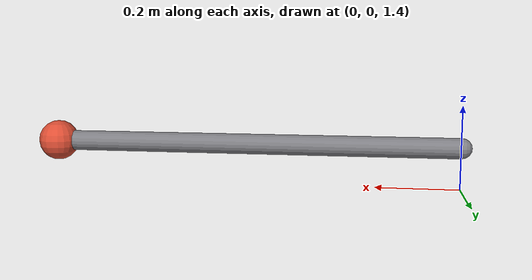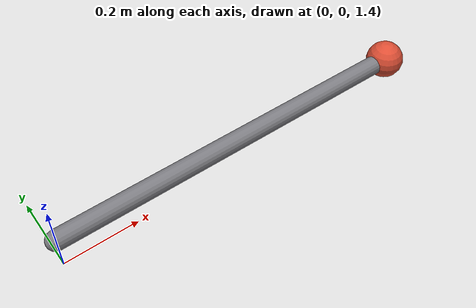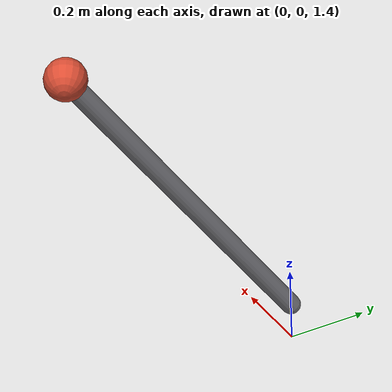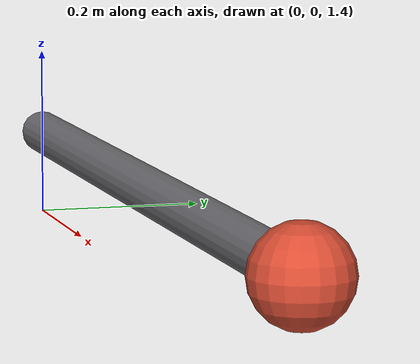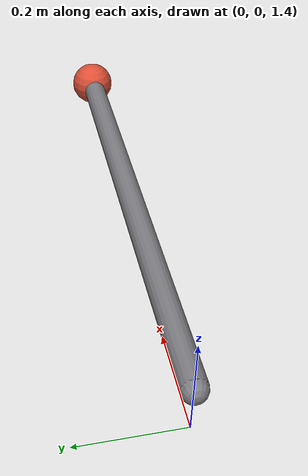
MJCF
<mujoco model="frame-acceleration">
    <compiler angle="radian"/>
    <option gravity="0 0 -9.81" timestep="0.001">
        <flag energy="enable"/>
    </option>

    <default>
        <geom contype="0" conaffinity="0"/>
    </default>

    <worldbody>
        <body name="arm" pos="0 0 1.5">
            <joint name="hinge" type="hinge" axis="0 1 0" damping="0.05"/>
            <geom name="rod" type="capsule" size="0.025"
                  fromto="0 0 0 1.0 0 0" rgba="0.48 0.48 0.50 1"/>
            <geom name="tip_ball" type="sphere" size="0.05"
                  pos="1.0 0 0" rgba="0.85 0.3 0.2 1"/>
            <site name="tip" pos="1.0 0 0"/>
        </body>
    </worldbody>

    <actuator>
        <motor name="motor" joint="hinge" gear="1"/>
    </actuator>

    <sensor>
        <framelinacc name="tip_linacc" objtype="site" objname="tip"/>
        <frameangacc name="tip_angacc" objtype="site" objname="tip"/>
        <jointpos name="theta" joint="hinge"/>
    </sensor>
</mujoco>
